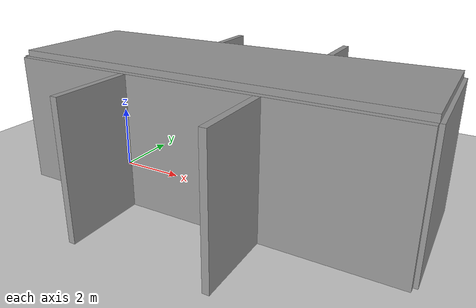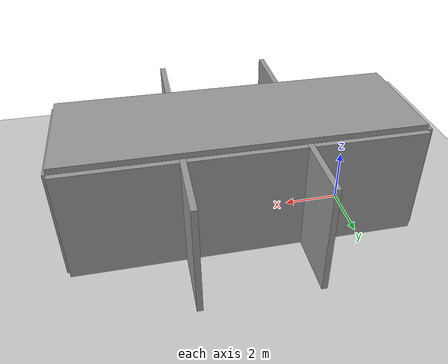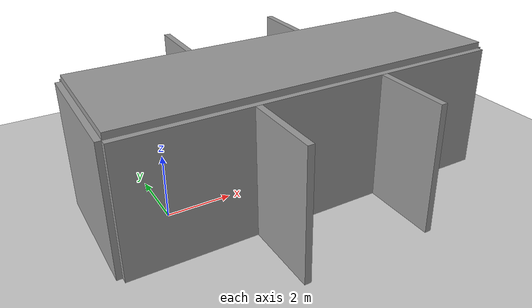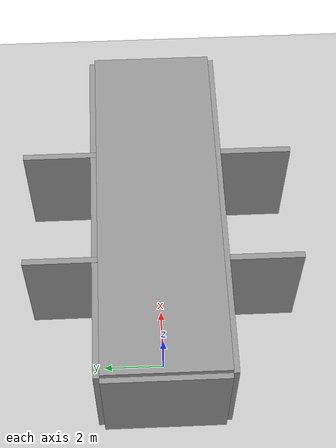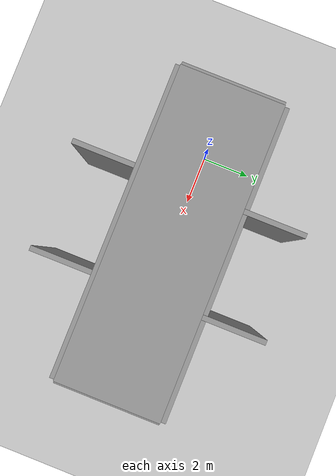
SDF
<sdf version="1.7">
 <world name="default">
  <light name="sun" type="directional">
   <pose>0 0 10 0 -0 0</pose>
   <diffuse>0.8 0.8 0.8 1</diffuse>
   <specular>0.2 0.2 0.2 1</specular>
   <attenuation>
    <range>1000</range>
    <constant>0.9</constant>
    <linear>0.01</linear>
    <quadratic>0.001</quadratic>
   </attenuation>
   <direction>-0.5 0.1 -0.9</direction>
   <spot><inner_angle>0</inner_angle><outer_angle>0</outer_angle><falloff>0</falloff></spot>
  </light>
  <plugin name="ros_interface_plugin" filename="librotors_gazebo_ros_interface_plugin.so"/>
  <model name="ground_plane">
   <static>1</static>
   <link name="link">
    <collision name="collision">
     <geometry><plane><normal>0 0 1</normal><size>100 100</size></plane></geometry>
     <surface>
      <contact><collide_bitmask>65535</collide_bitmask></contact>
      <friction><ode><mu>100</mu><mu2>50</mu2></ode></friction>
     </surface>
    </collision>
    <visual name="visual">
     <cast_shadows>0</cast_shadows>
     <geometry><plane><normal>0 0 1</normal><size>100 100</size></plane></geometry>
     <material>
      <script><uri>file://media/materials/scripts/gazebo.material</uri><name>Gazebo/Grey</name></script>
     </material>
    </visual>
   </link>
  </model>
  <gravity>0 0 -9.8</gravity>
  <magnetic_field>6e-06 2.3e-05 -4.2e-05</magnetic_field>
  <atmosphere type="adiabatic"/>
  <physics type="ode">
   <max_step_size>0.001</max_step_size>
   <real_time_factor>1</real_time_factor>
   <real_time_update_rate>1000</real_time_update_rate>
  </physics>
  <scene><ambient>0.4 0.4 0.4 1</ambient><background>0.7 0.7 0.7 1</background><shadows>1</shadows></scene>
  <spherical_coordinates>
   <surface_model>EARTH_WGS84</surface_model>
   <latitude_deg>0</latitude_deg>
   <longitude_deg>0</longitude_deg>
   <elevation>0</elevation>
   <heading_deg>0</heading_deg>
  </spherical_coordinates>
  <model name="grey_wall">
   <static>1</static>
   <link name="link">
    <pose>0 0 2 0 -0 0</pose>
    <collision name="collision"><geometry><box><size>12 0.2 4</size></box></geometry></collision>
    <visual name="visual">
     <cast_shadows>0</cast_shadows>
     <geometry><box><size>12 0.2 4</size></box></geometry>
     <material><script><name>vrc/grey_wall</name><uri>__default__</uri></script></material>
    </visual>
   </link>
   <pose>4.00391 -2.09108 0.00243 0 -0 0</pose>
  </model>
  <model name="grey_wall_clone">
   <static>1</static>
   <link name="link">
    <pose>0 0 2 0 -0 0</pose>
    <collision name="collision"><geometry><box><size>12 0.2 4</size></box></geometry></collision>
    <visual name="visual">
     <cast_shadows>0</cast_shadows>
     <geometry><box><size>12 0.2 4</size></box></geometry>
     <material><script><name>vrc/grey_wall</name><uri>__default__</uri></script></material>
    </visual>
   </link>
   <pose>4.00436 2.10473 -0.00644 0 -0 0</pose>
  </model>
  <model name="grey_wall_0">
   <static>1</static>
   <link name="link">
    <pose>0 0 2 0 -0 0</pose>
    <collision name="collision"><geometry><box><size>0.2 4 4</size></box></geometry></collision>
    <visual name="visual">
     <cast_shadows>0</cast_shadows>
     <geometry><box><size>0.2 4 4</size></box></geometry>
     <material><script><name>vrc/grey_wall</name><uri>__default__</uri></script></material>
    </visual>
   </link>
   <pose>-2.06266 0.005122 0 0 -0 0</pose>
  </model>
  <model name="grey_wall_0_clone">
   <static>1</static>
   <link name="link">
    <pose>0 0 2 0 -0 0</pose>
    <collision name="collision"><geometry><box><size>0.2 4 4</size></box></geometry></collision>
    <visual name="visual">
     <cast_shadows>0</cast_shadows>
     <geometry><box><size>0.2 4 4</size></box></geometry>
     <material><script><name>vrc/grey_wall</name><uri>__default__</uri></script></material>
    </visual>
   </link>
   <pose>10.0211 0.005587 0 0 -0 0</pose>
  </model>
  <model name="grey_wall_0_clone_0">
   <static>1</static>
   <link name="link">
    <pose>0 0 2 0 -0 0</pose>
    <collision name="collision"><geometry><box><size>0.2 4 4</size></box></geometry></collision>
    <visual name="visual">
     <cast_shadows>0</cast_shadows>
     <geometry><box><size>0.2 4 4</size></box></geometry>
     <material><script><name>vrc/grey_wall</name><uri>__default__</uri></script></material>
    </visual>
   </link>
   <pose>2.03379 2.41243 0 0 -0 0</pose>
  </model>
  <model name="grey_wall_0_clone_1">
   <static>1</static>
   <link name="link">
    <pose>0 0 2 0 -0 0</pose>
    <collision name="collision"><geometry><box><size>0.2 4 4</size></box></geometry></collision>
    <visual name="visual">
     <cast_shadows>0</cast_shadows>
     <geometry><box><size>0.2 4 4</size></box></geometry>
     <material><script><name>vrc/grey_wall</name><uri>__default__</uri></script></material>
    </visual>
   </link>
   <pose>6.06187 2.45814 0 0 -0 0</pose>
  </model>
  <model name="grey_wall_0_clone_2">
   <static>1</static>
   <link name="link">
    <pose>0 0 2 0 -0 0</pose>
    <collision name="collision"><geometry><box><size>0.2 4 4</size></box></geometry></collision>
    <visual name="visual">
     <cast_shadows>0</cast_shadows>
     <geometry><box><size>0.2 4 4</size></box></geometry>
     <material><script><name>vrc/grey_wall</name><uri>__default__</uri></script></material>
    </visual>
   </link>
   <pose>1.94298 -2.59166 0 0 -0 0</pose>
  </model>
  <model name="grey_wall_0_clone_3">
   <static>1</static>
   <link name="link">
    <pose>0 0 2 0 -0 0</pose>
    <collision name="collision"><geometry><box><size>0.2 4 4</size></box></geometry></collision>
    <visual name="visual">
     <cast_shadows>0</cast_shadows>
     <geometry><box><size>0.2 4 4</size></box></geometry>
     <material><script><name>vrc/grey_wall</name><uri>__default__</uri></script></material>
    </visual>
   </link>
   <pose>6.03672 -2.54813 0 0 -0 0</pose>
  </model>
  <model name="grey_wall_1">
   <static>1</static>
   <link name="link">
    <pose>0 0 2 0 -0 0</pose>
    <collision name="collision"><geometry><box><size>12 4 0.2</size></box></geometry></collision>
    <visual name="visual">
     <cast_shadows>0</cast_shadows>
     <geometry><box><size>12 4 0.2</size></box></geometry>
     <material><script><name>vrc/grey_wall</name><uri>__default__</uri></script></material>
    </visual>
   </link>
   <pose>4.01388 0.002551 2.09857 0 -0 0</pose>
  </model>
 </world>
</sdf>
